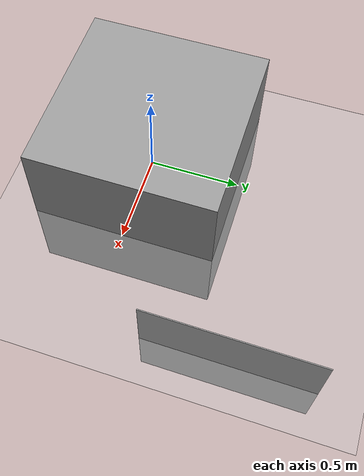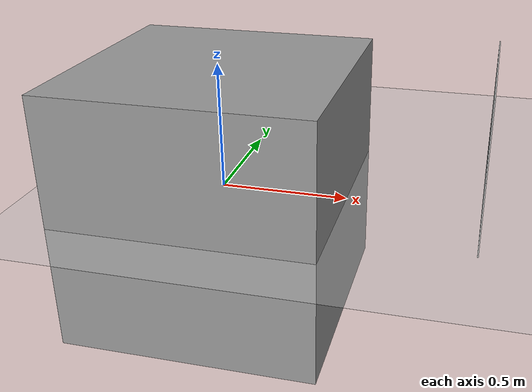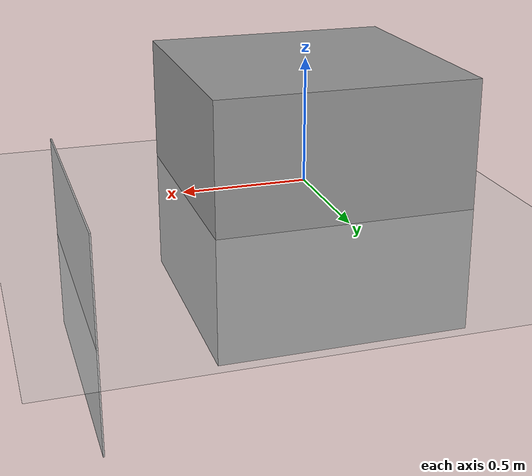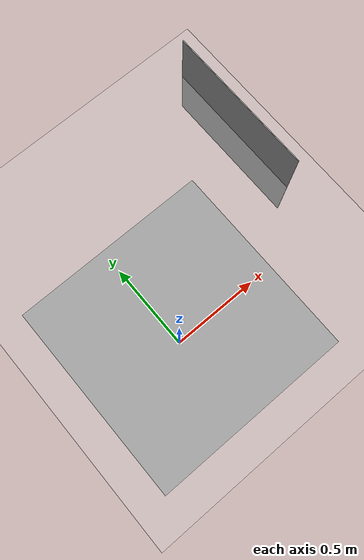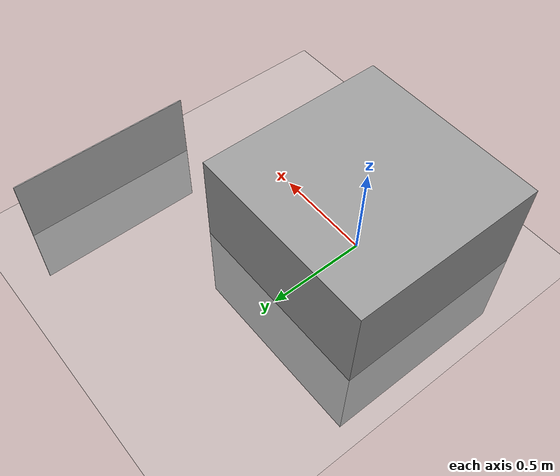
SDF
<?xml version="1.0" ?>

<sdf version="1.4">
  <world name="default">
    <include>
      <uri>model://ground_plane</uri>
    </include>
    <include>
      <uri>model://sun</uri>
    </include>
    <model name='Grid_calibration'>
      <static>1</static>
      <link name='link'>
        <pose frame=''>0 0 0 0 1.5705 0</pose>
        <must_be_base_link>1</must_be_base_link>
        <collision name='collision'>
          <geometry>
            <box>
              <size>0.7 0.9 0.005</size>
            </box>
          </geometry>
          <max_contacts>10</max_contacts>
          <surface>
            <contact>
              <ode/>
            </contact>
            <bounce/>
            <friction>
              <torsional>
                <ode/>
              </torsional>
              <ode/>
            </friction>
          </surface>
        </collision>
        <visual name='visual'>
          <cast_shadows>0</cast_shadows>
          <geometry>
            <box>
              <size>0.7 0.9 0.005</size>
            </box>
          </geometry>
          <material>
            <script>
              <uri>model://Grid_calibration/materials/scripts</uri>
              <uri>model://Grid_calibration/materials/textures</uri>
              <name>Grid_calibration/Image</name>
            </script>
          </material>
        </visual>
        <self_collide>0</self_collide>
        <kinematic>0</kinematic>
      </link>
      <pose frame=''>1.0171 0.726327 0 0 -0 0</pose>
    </model>
    <model name='unit_box'>
      <pose frame=''>0 0 0 0 0 0</pose>
      <link name='link'>
        <inertial>
          <mass>1</mass>
          <inertia>
            <ixx>0.166667</ixx>
            <ixy>0</ixy>
            <ixz>0</ixz>
            <iyy>0.166667</iyy>
            <iyz>0</iyz>
            <izz>0.166667</izz>
          </inertia>
        </inertial>
        <collision name='collision'>
          <geometry>
            <box>
              <size>1 1 1</size>
            </box>
          </geometry>
          <max_contacts>10</max_contacts>
          <surface>
            <contact>
              <ode/>
            </contact>
            <bounce/>
            <friction>
              <torsional>
                <ode/>
              </torsional>
              <ode/>
            </friction>
          </surface>
        </collision>
        <visual name='visual'>
          <geometry>
            <box>
              <size>1 1 1</size>
            </box>
          </geometry>
          <material>
            <script>
              <name>Gazebo/Grey</name>
              <uri>file://media/materials/scripts/gazebo.material</uri>
            </script>
          </material>
        </visual>
        <self_collide>0</self_collide>
        <kinematic>0</kinematic>
      </link>
    </model>

  </world>
</sdf>
